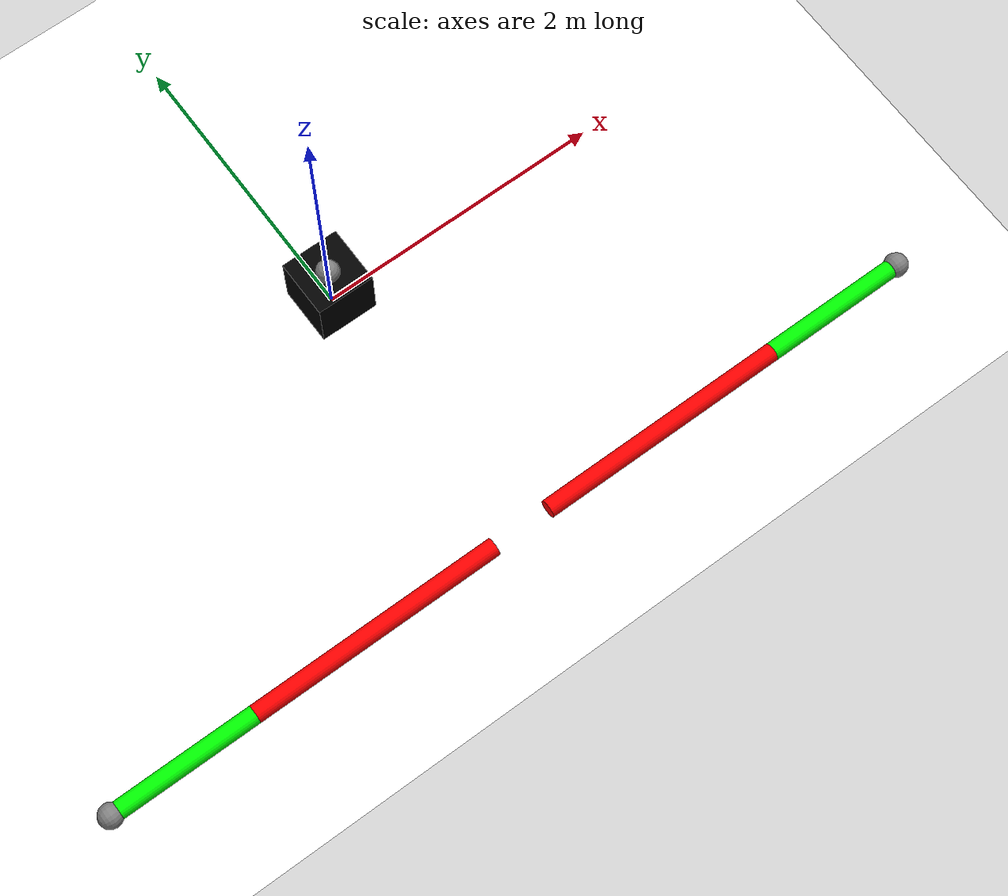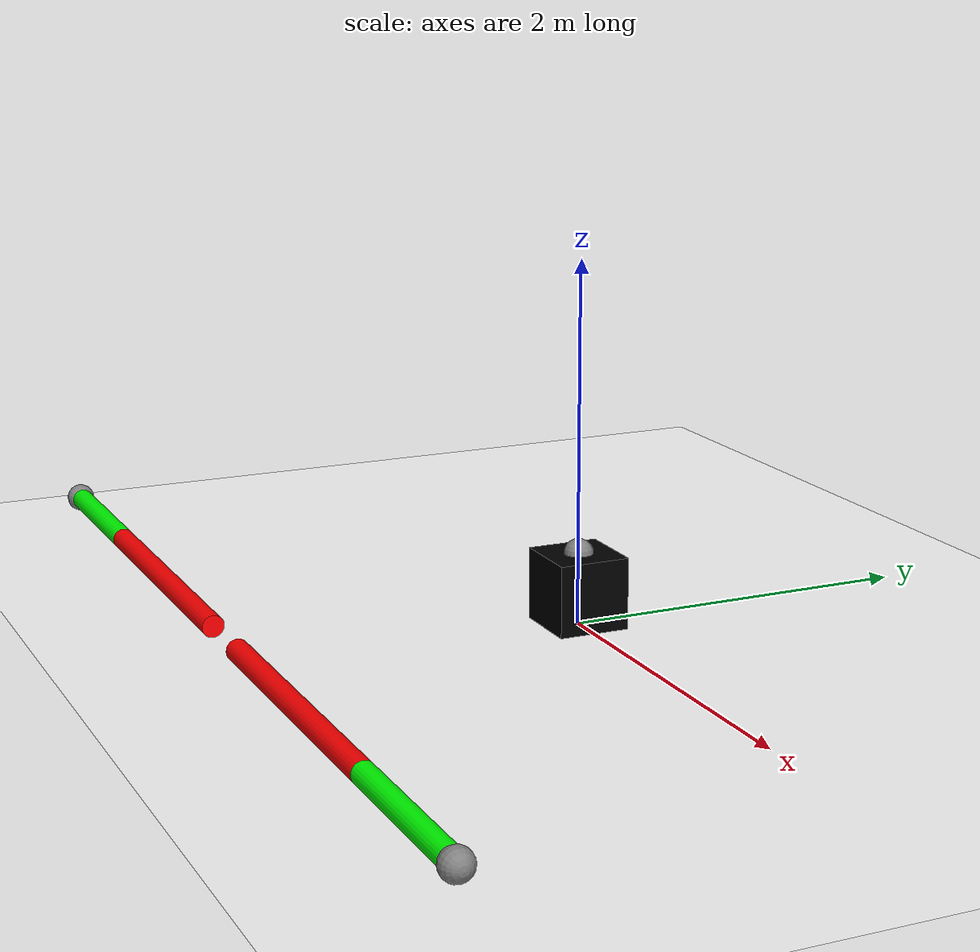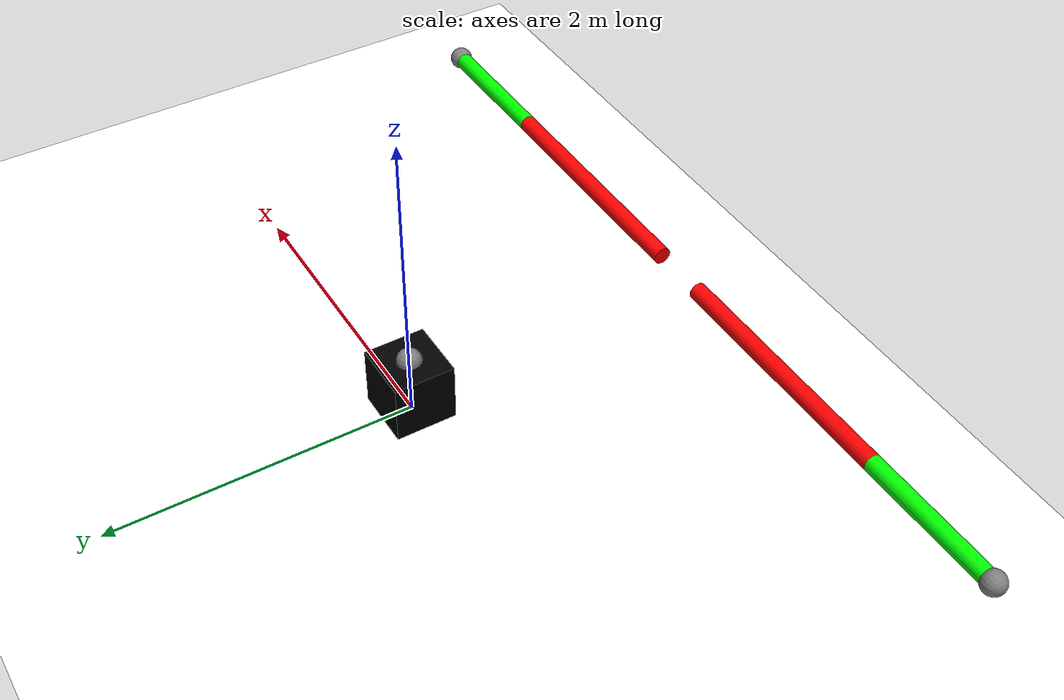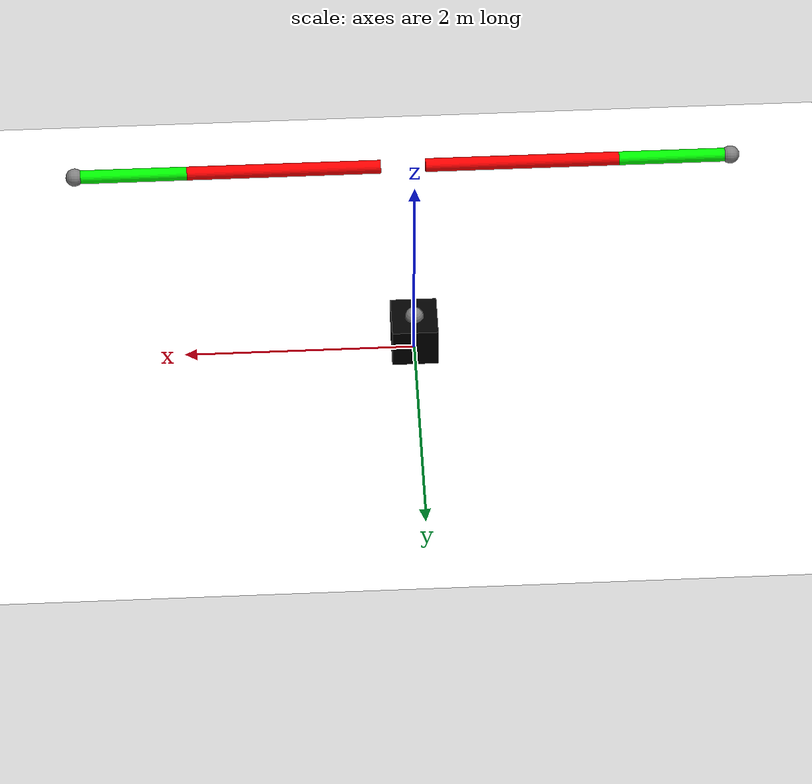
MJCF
<mujoco>
  <option gravity="0 0 -9.8" />
  <worldbody>
    <light diffuse=".5 .5 .5" pos="0 0 10" dir="0 0 -1"/>
    <geom type="plane" size="4 4 0.1" rgba="1 1 1 1"/>

    <body name="object" pos="0 0 0.2">
      <joint name="obj_joint" type="free"/>
      <geom name="obj_geom" type="box" size="0.2 0.2 0.2" rgba="0 0 0 4" mass="1"/>
      <site name="obj_pos" size="0.08" pos="0 0 0.2"/>
    </body>

    <body pos="-1.066 -2 0.2" euler="90 -90 90">
      <joint name="1" type="hinge" axis="1 0 0" pos="0 0 -0.866" damping="25" stiffness="0.1"/>
      <geom type="cylinder" size="0.06 0.866" rgba="1 0 0 1" mass="0.1"/>
      <body pos="0 0 1.366" euler="0 0 0">
        <joint name="2" type="hinge" axis="1 0 0" pos="0 0 -0.5" damping="20" stiffness="1"/>
        <geom type="cylinder" size="0.06 0.5" rgba="0 1 0 1" mass="0.03"/>
        <site name="tip1" size="0.08" pos="0 0 0.5"/>
      </body>
    </body>

    <body pos="1.066 -2 0.2" euler="90 90 90">
      <joint name="3" type="hinge" axis="1 0 0" pos="0 0 -0.866" damping="25" stiffness="1"/>
      <geom type="cylinder" size="0.06 0.866" rgba="1 0 0 1" mass="0.1"/>
      <body pos="0 0 1.366" euler="0 0 0">
        <joint name="4" type="hinge" axis="1 0 0" pos="0 0 -0.5" damping="20" stiffness="1"/>
        <geom type="cylinder" size="0.06 0.5" rgba="0 1 0 1" mass="0.03"/>
        <site name="tip2" size="0.08" pos="0 0 0.5"/>
      </body>
    </body>
  </worldbody>

  <sensor>
    <framepos objtype="site" objname="tip1"/>
    <framepos objtype="site" objname="tip2"/>
  </sensor>

  <actuator>
    <position name="link1" joint="1" ctrllimited="true" ctrlrange="-3.14 3.14" kp="30"/>
    <position name="link2" joint="2" ctrllimited="true" ctrlrange="-3.14 3.14" kp="100"/>
    <position name="link3" joint="3" ctrllimited="true" ctrlrange="-3.14 3.14" kp="30"/>
    <position name="link4" joint="4" ctrllimited="true" ctrlrange="-3.14 3.14" kp="100"/>
  </actuator>
</mujoco>
